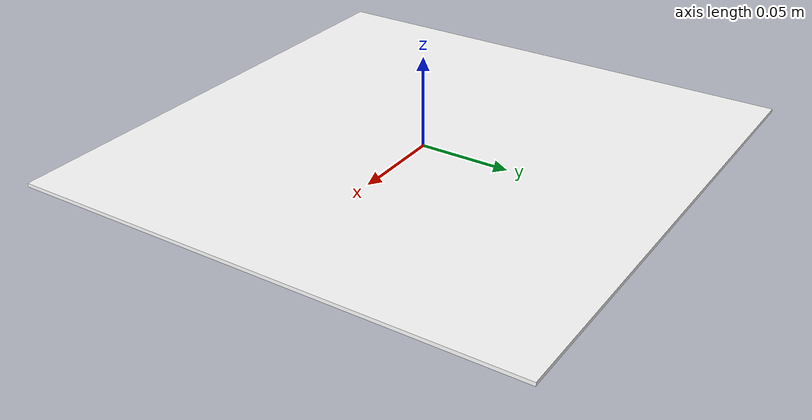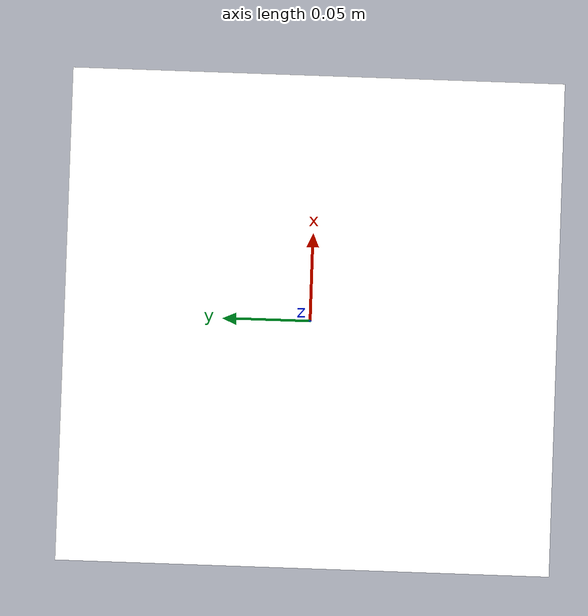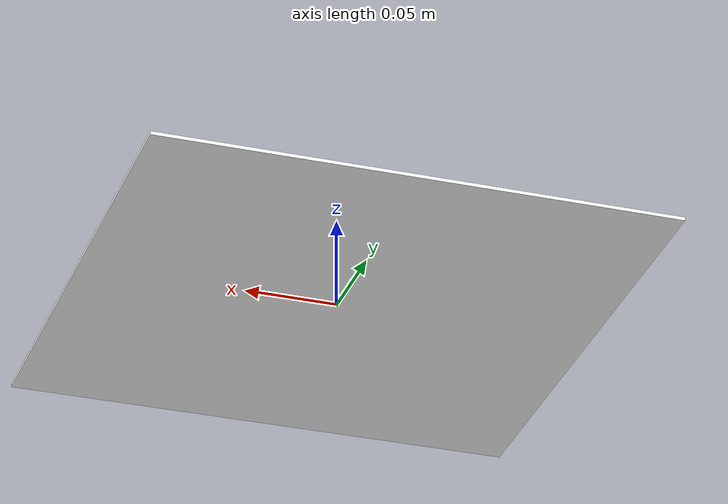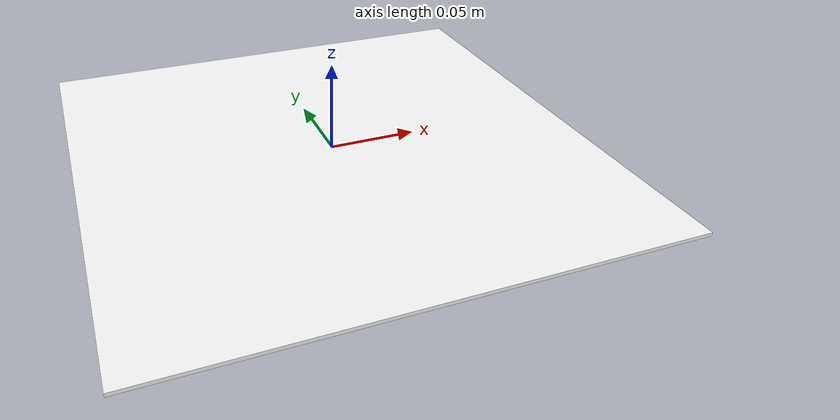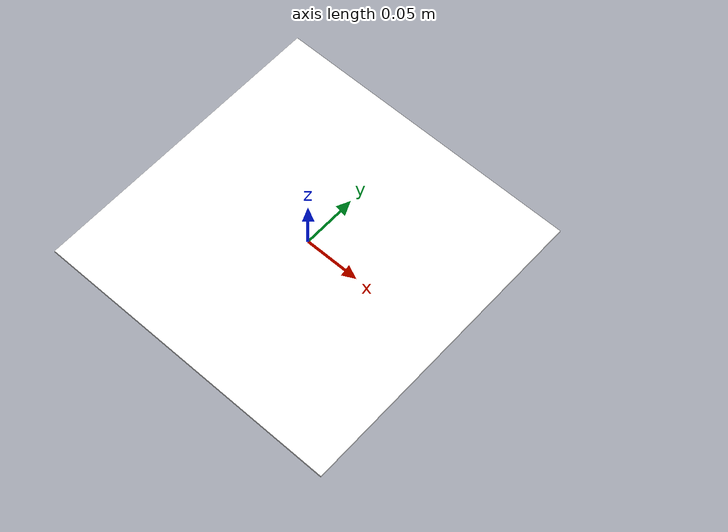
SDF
<?xml version="1.0" encoding="UTF-8"?>
<sdf version='1.9'>
  <model name='aruco_landing_pad'>
    <static>true</static>
    <link name='pad_link'>
      <visual name='pad_visual'>
        <geometry>
          <box><size>0.28 0.28 0.002</size></box>
        </geometry>
        <material>
          <ambient>1 1 1 1</ambient>
          <diffuse>1 1 1 1</diffuse>
          <specular>0.1 0.1 0.1 1</specular>
          <pbr>
            <metal>
              <albedo_map>materials/textures/aruco_5x5_50_id0.png</albedo_map>
              <metalness>0.0</metalness>
              <roughness>1.0</roughness>
            </metal>
          </pbr>
        </material>
      </visual>
      <collision name='pad_collision'>
        <geometry>
          <box><size>0.28 0.28 0.002</size></box>
        </geometry>
      </collision>
    </link>
  </model>
</sdf>
